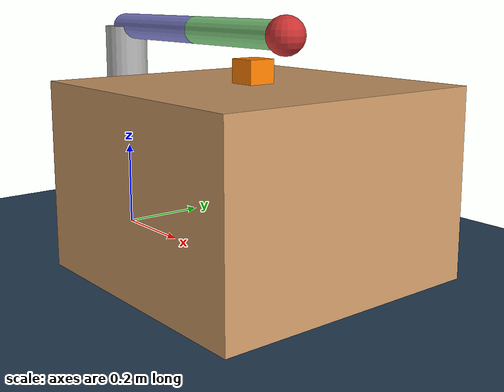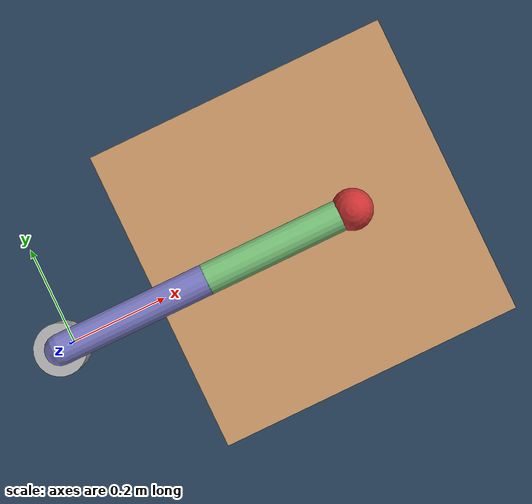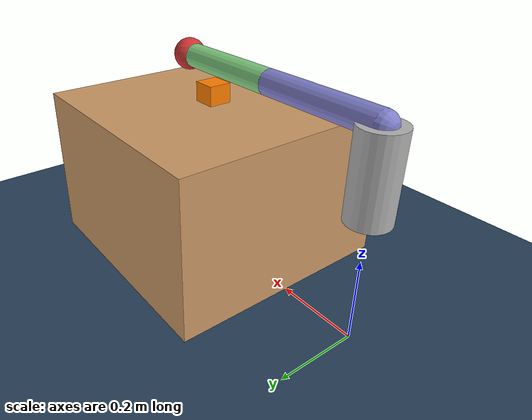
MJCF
<mujoco model="pick_place">
  <compiler angle="radian" coordinate="local"/>

  <option timestep="0.002" gravity="0 0 -9.81"/>

  <visual>
    <global offwidth="224" offheight="224"/>
  </visual>

  <asset>
    <texture name="grid" type="2d" builtin="checker" width="512" height="512" rgb1=".1 .2 .3" rgb2=".2 .3 .4"/>
    <material name="grid" texture="grid" texrepeat="1 1" texuniform="true" reflectance=".2"/>
  </asset>

  <worldbody>
    <light pos="0 0 1.5" dir="0 0 -1" diffuse="1 1 1"/>
    <camera name="fixed" pos="0.8 0.8 0.8" xyaxes="-1 1 0 -0.5 -0.5 1"/>
    <geom name="floor" type="plane" size="2 2 .1" material="grid"/>

    <!-- Table -->
    <body name="table" pos="0.5 0 0.2">
      <geom type="box" size="0.3 0.3 0.2" rgba="0.8 0.6 0.4 1"/>
    </body>

    <!-- Simple 3-DOF arm -->
    <body name="base" pos="0 0 0.4">
      <geom type="cylinder" size="0.05 0.1" rgba="0.7 0.7 0.7 1"/>
      <joint name="joint0" type="hinge" axis="0 0 1" range="-3.14 3.14" damping="1"/>

      <body name="link1" pos="0 0 0.1">
        <geom type="capsule" fromto="0 0 0 0.3 0 0" size="0.03" rgba="0.5 0.5 0.8 1"/>
        <joint name="joint1" type="hinge" axis="0 1 0" range="-1.57 1.57" damping="1"/>

        <body name="link2" pos="0.3 0 0">
          <geom type="capsule" fromto="0 0 0 0.3 0 0" size="0.03" rgba="0.5 0.8 0.5 1"/>
          <joint name="joint2" type="hinge" axis="0 1 0" range="-1.57 1.57" damping="1"/>

          <body name="ee" pos="0.3 0 0">
            <site name="ee_site" pos="0 0 0" size="0.02"/>
            <geom type="sphere" size="0.04" rgba="0.8 0.2 0.2 1"/>
          </body>
        </body>
      </body>
    </body>

    <!-- Object to manipulate -->
    <body name="object" pos="0.5 0 0.42">
      <joint type="free"/>
      <geom name="object_geom" type="box" size="0.03 0.03 0.03" rgba="1 0.5 0 1" mass="0.1"/>
    </body>
  </worldbody>

  <actuator>
    <position name="act0" joint="joint0" kp="10" ctrlrange="-3.14 3.14"/>
    <position name="act1" joint="joint1" kp="10" ctrlrange="-1.57 1.57"/>
    <position name="act2" joint="joint2" kp="10" ctrlrange="-1.57 1.57"/>
  </actuator>
</mujoco>
